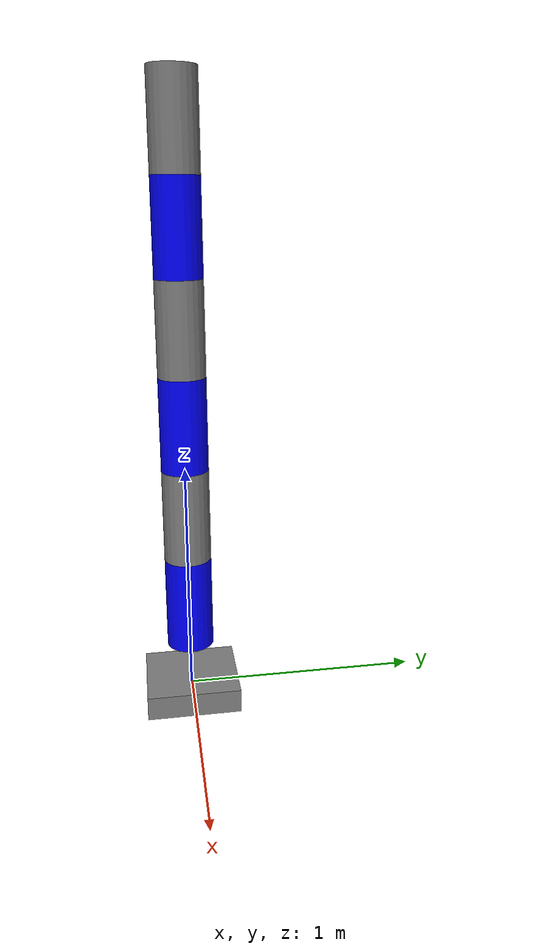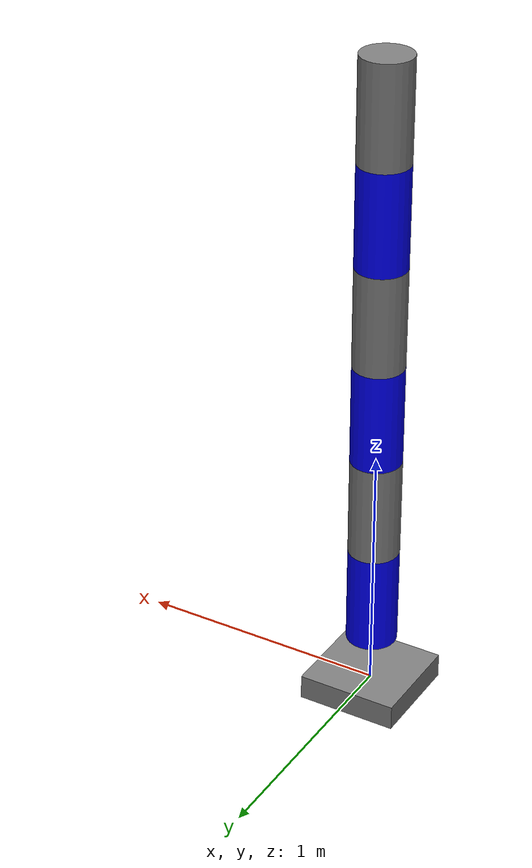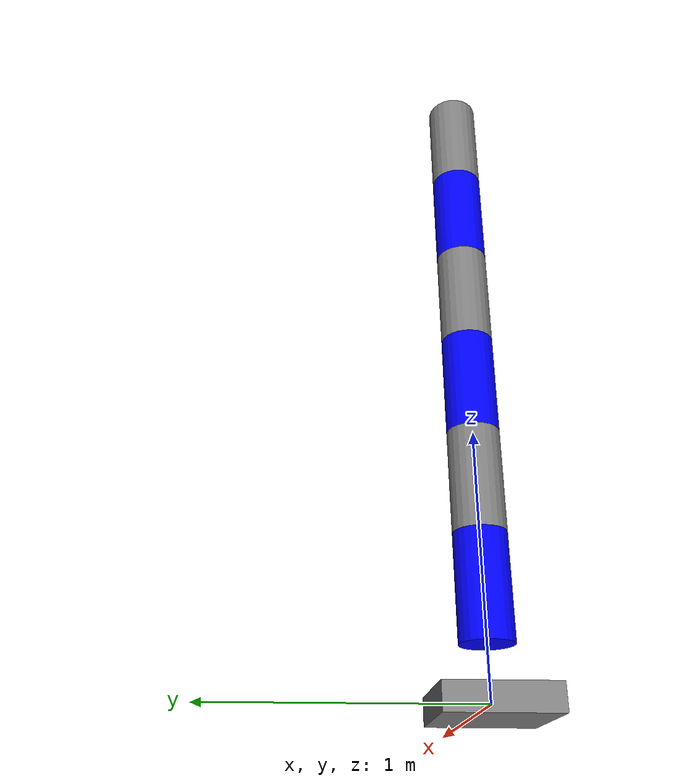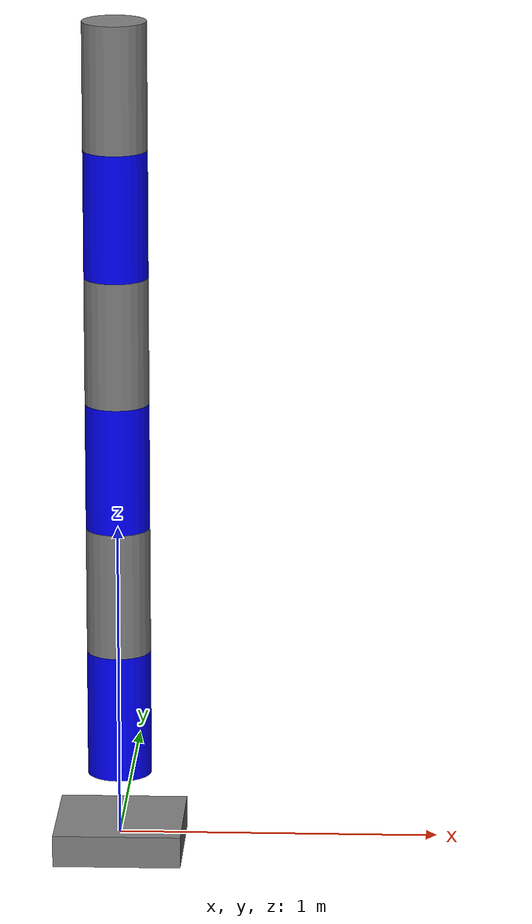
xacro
<?xml version="1.0"?>
<robot xmlns:xacro="http://www.ros.org/wiki/xacro" name="simple_robot_arm">

  <material name="blue">
    <color rgba="0.0 0.0 1.0 1.0"/>
  </material>
  <material name="grey">
    <color rgba="0.5 0.5 0.5 1.0"/>
  </material>

  <xacro:macro name="simple_link" params="name material">
    <link name="${name}">
      <visual>
        <geometry>
          <cylinder length="0.4" radius="0.1"/>
        </geometry>
        <material name="${material}"/>
      </visual>
      <collision>
        <geometry>
          <cylinder length="0.4" radius="0.1"/>
        </geometry>
      </collision>
      <inertial>
        <mass value="1.0"/>
        <inertia ixx="0.01" ixy="0.0" ixz="0.0" iyy="0.01" iyz="0.0" izz="0.01"/>
      </inertial>
    </link>
  </xacro:macro>

  <xacro:macro name="simple_joint" params="name type parent child axis_xyz">
    <joint name="${name}" type="${type}">
      <parent link="${parent}"/>
      <child link="${child}"/>
      <origin xyz="0 0 0.4" rpy="0 0 0"/>
      <axis xyz="${axis_xyz}"/>
      <limit effort="1000.0" lower="-3.14" upper="3.14" velocity="1.0"/>
    </joint>
  </xacro:macro>

  <link name="base_link">
    <visual>
      <geometry>
        <box size="0.4 0.4 0.1"/>
      </geometry>
      <material name="grey"/>
    </visual>
    <collision>
      <geometry>
        <box size="0.4 0.4 0.1"/>
      </geometry>
    </collision>
  </link>

  <xacro:simple_link name="link_1" material="blue"/>
  <xacro:simple_link name="link_2" material="grey"/>
  <xacro:simple_link name="link_3" material="blue"/>
  <xacro:simple_link name="link_4" material="grey"/>
  <xacro:simple_link name="link_5" material="blue"/>
  <xacro:simple_link name="link_6_gripper" material="grey"/>

  <xacro:simple_joint name="joint_1" type="revolute" parent="base_link" child="link_1" axis_xyz="0 0 1"/>
  <xacro:simple_joint name="joint_2" type="revolute" parent="link_1" child="link_2" axis_xyz="0 1 0"/>
  <xacro:simple_joint name="joint_3" type="revolute" parent="link_2" child="link_3" axis_xyz="0 1 0"/>
  <xacro:simple_joint name="joint_4" type="revolute" parent="link_3" child="link_4" axis_xyz="0 0 1"/>
  <xacro:simple_joint name="joint_5" type="revolute" parent="link_4" child="link_5" axis_xyz="0 1 0"/>
  <xacro:simple_joint name="joint_6" type="revolute" parent="link_5" child="link_6_gripper" axis_xyz="0 0 1"/>

  <link name="finger_1">
    <visual>
      <geometry>
        <box size="0.02 0.02 0.1"/>
      </geometry>
      <material name="blue"/>
    </visual>
  </link>
  <joint name="finger_joint_1" type="prismatic"> <parent link="link_6_gripper"/>
    <child link="finger_1"/>
    <origin xyz="0 0.05 0.05" rpy="0 0 0"/>
    <axis xyz="0 1 0"/>
    <limit effort="100.0" lower="0.0" upper="0.04" velocity="1.0"/>
  </joint>

  <ros2_control name="GazeboSystem" type="system">
    <hardware>
      <plugin>gazebo_ros2_control/GazeboSystem</plugin>
    </hardware>

    <joint name="joint_1">
      <command_interface name="velocity"/>
      <state_interface name="position"/>
      <state_interface name="velocity"/>
    </joint>
    <joint name="joint_2">
      <command_interface name="velocity"/>
      <state_interface name="position"/>
      <state_interface name="velocity"/>
    </joint>
    <joint name="joint_3">
      <command_interface name="velocity"/>
      <state_interface name="position"/>
      <state_interface name="velocity"/>
    </joint>
    <joint name="joint_4">
      <command_interface name="velocity"/>
      <state_interface name="position"/>
      <state_interface name="velocity"/>
    </joint>
    <joint name="joint_5">
      <command_interface name="velocity"/>
      <state_interface name="position"/>
      <state_interface name="velocity"/>
    </joint>
    <joint name="joint_6">
      <command_interface name="velocity"/>
      <state_interface name="position"/>
      <state_interface name="velocity"/>
    </joint>

    <joint name="finger_joint_1">
      <command_interface name="position"/>
      <state_interface name="position"/>
      <state_interface name="velocity"/>
    </joint>
  </ros2_control>

  <gazebo_plugin name="camera" filename="libgazebo_ros_camera.so">
      <ros>
          <namespace>camera</namespace>
      </ros>
      <camera>
          <horizontal_fov>1.047</horizontal_fov>
          <image>
              <width>640</width>
              <height>480</height>
          </image>
          <clip>
              <near>0.1</near>
              <far>100</far>
          </clip>
      </camera>
  </gazebo_plugin>

</robot>
